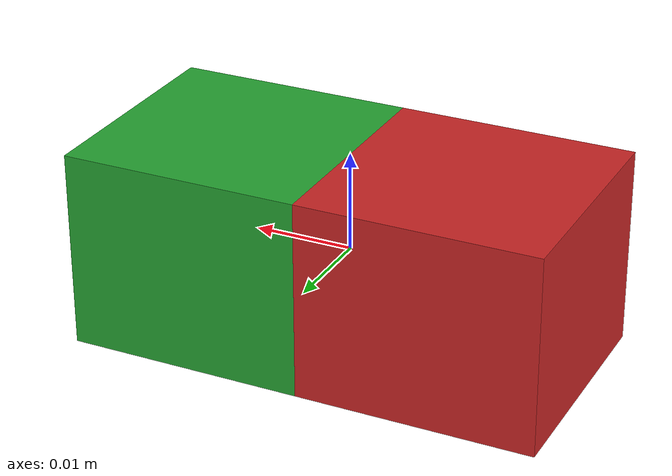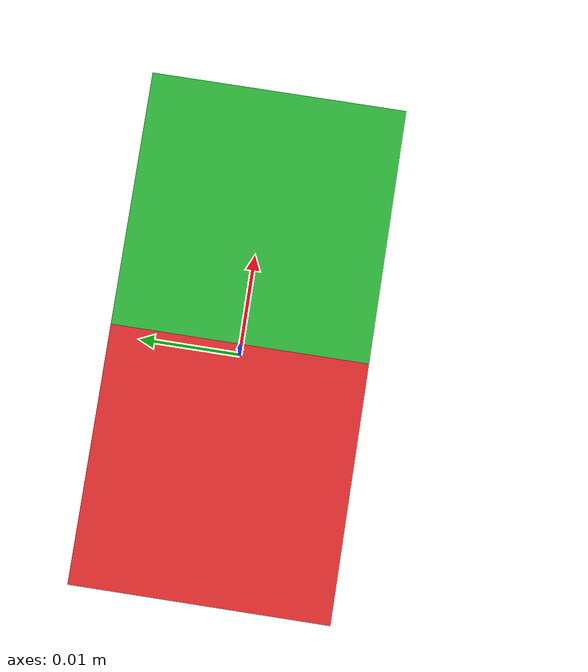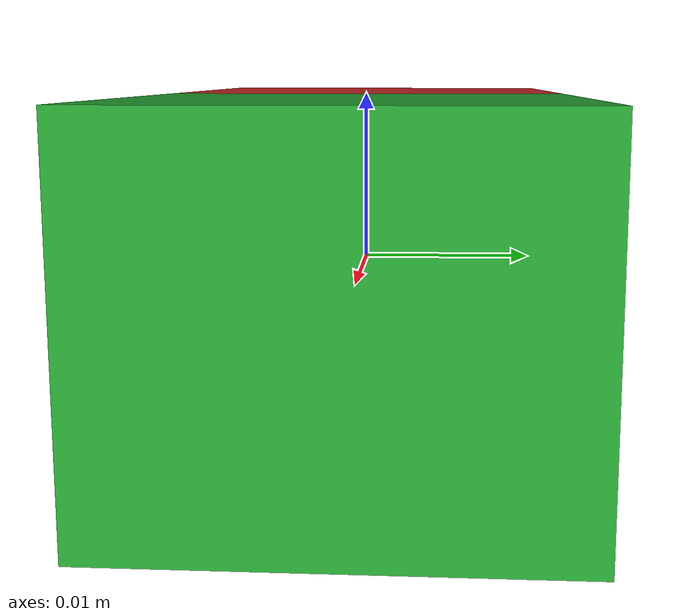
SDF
<?xml version="1.0" ?>
<sdf version="1.7">
  <model name="domino_red_green">
    <static>false</static>
    <link name="link">
      <inertial>
        <!-- 0.02 kg — light enough for smooth simulation.
             Grasping uses a fixed ODE joint (link attacher plugin) +
             physical finger closure — no vacuum needed. -->
        <mass>0.02</mass>
        <inertia>
          <ixx>1.627e-6</ixx><ixy>0</ixy><ixz>0</ixz>
          <iyy>4.507e-6</iyy><iyz>0</iyz>
          <izz>4.800e-6</izz>
        </inertia>
      </inertial>
      <collision name="collision">
        <max_contacts>20</max_contacts>
        <geometry>
          <box>
            <size>0.048 0.024 0.020</size>
          </box>
        </geometry>
        <surface>
          <friction>
            <ode>
              <mu>100.0</mu>
              <mu2>100.0</mu2>
            </ode>
          </friction>
          <contact>
            <ode>
              <kp>100000000.0</kp>
              <kd>1000.0</kd>
              <min_depth>0.001</min_depth>
              <max_vel>0.0</max_vel>
            </ode>
          </contact>
        </surface>
      </collision>
      <!-- Each visual half is 0.024 x 0.024 x 0.020, offset ±0.012 along x -->
      <visual name="visual_left">
        <pose>-0.012 0 0 0 0 0</pose>
        <geometry>
          <box>
            <size>0.024 0.024 0.020</size>
          </box>
        </geometry>
        <material>
          <script>
            <uri>file://media/materials/scripts/gazebo.material</uri>
            <name>Gazebo/Red</name>
          </script>
        </material>
      </visual>
      <visual name="visual_right">
        <pose>0.012 0 0 0 0 0</pose>
        <geometry>
          <box>
            <size>0.024 0.024 0.020</size>
          </box>
        </geometry>
        <material>
          <script>
            <uri>file://media/materials/scripts/gazebo.material</uri>
            <name>Gazebo/Green</name>
          </script>
        </material>
      </visual>
    </link>
  </model>
</sdf>
